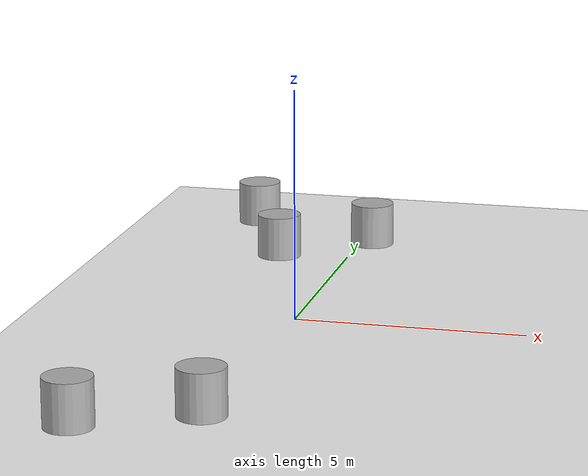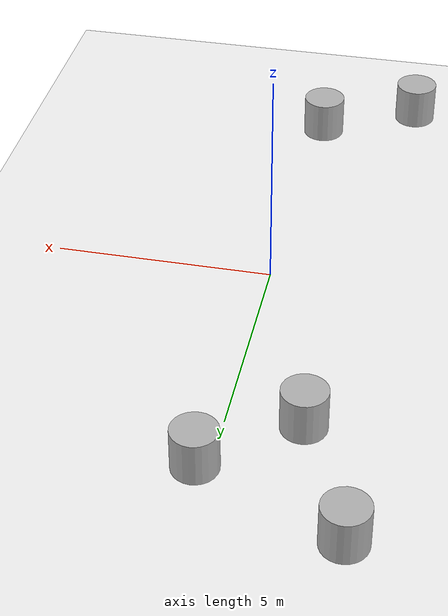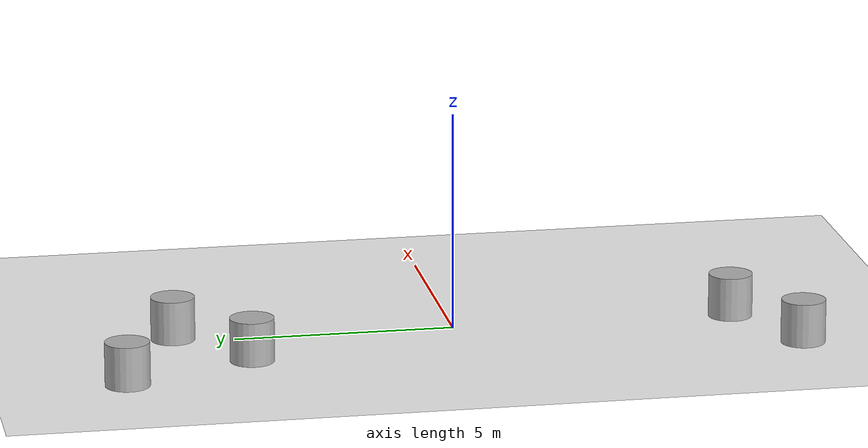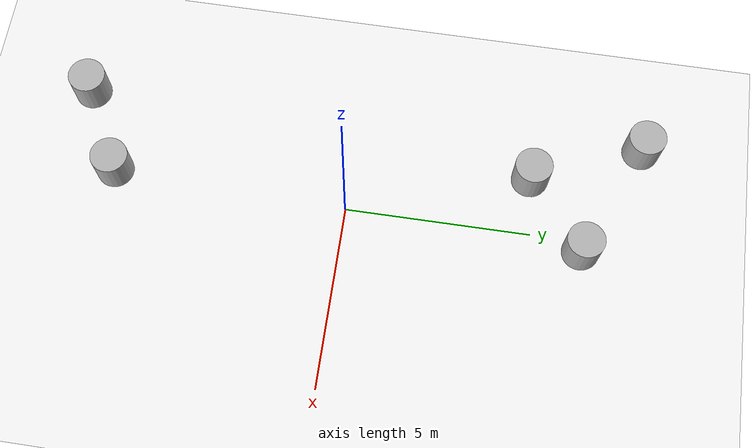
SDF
<sdf version='1.10'>
  <world name='empty'>
    <gravity>0 0 -9.8100000000000005</gravity>
    <plugin name='gz::sim::systems::Physics' filename='gz-sim-physics-system'/>
    <plugin name='gz::sim::systems::UserCommands' filename='gz-sim-user-commands-system'/>
    <plugin name='gz::sim::systems::SceneBroadcaster' filename='gz-sim-scene-broadcaster-system'/>
    <plugin name='gz::sim::systems::Sensors' filename='gz-sim-sensors-system'>
      <render_engine>ogre2</render_engine>
    </plugin>
    <magnetic_field>5.5644999999999998e-06 2.2875799999999999e-05 -4.2388400000000002e-05</magnetic_field>
    <atmosphere type='adiabatic'/>
    <physics type='ode'>
      <max_step_size>0.001</max_step_size>
      <real_time_factor>1</real_time_factor>
      <real_time_update_rate>1000</real_time_update_rate>
    </physics>
    <scene>
      <ambient>0.400000006 0.400000006 0.400000006 1</ambient>
      <background>0.699999988 0.699999988 0.699999988 1</background>
      <shadows>true</shadows>
    </scene>
    <model name='ground_plane'>
      <static>true</static>
      <link name='link'>
        <collision name='collision'>
          <geometry>
            <plane>
              <normal>0 0 1</normal>
              <size>100 100</size>
            </plane>
          </geometry>
          <surface>
            <friction>
              <ode/>
            </friction>
            <bounce/>
            <contact/>
          </surface>
        </collision>
        <visual name='visual'>
          <geometry>
            <plane>
              <normal>0 0 1</normal>
              <size>100 100</size>
            </plane>
          </geometry>
          <material>
            <ambient>0.920000017 0.920000017 0.920000017 1</ambient>
            <diffuse>0.959999979 0.959999979 0.959999979 1</diffuse>
            <specular>0.0500000007 0.0500000007 0.0500000007 1</specular>
          </material>
        </visual>
        <pose>0 0 0 0 0 0</pose>
        <inertial>
          <pose>0 0 0 0 0 0</pose>
          <mass>1</mass>
          <inertia>
            <ixx>1</ixx>
            <ixy>0</ixy>
            <ixz>0</ixz>
            <iyy>1</iyy>
            <iyz>0</iyz>
            <izz>1</izz>
          </inertia>
        </inertial>
        <enable_wind>false</enable_wind>
      </link>
      <pose>0 0 0 0 0 0</pose>
      <self_collide>false</self_collide>
    </model>
    <model name='cylinder'>
      <pose>-2.8514934620803851 7.7583001073047981 0.49999943794446622 -1.3041130000047322e-08 -1.8052341412127071e-08 0.096722305677201303</pose>
      <link name='cylinder_link'>
        <inertial>
          <inertia>
            <ixx>0.14580000000000001</ixx>
            <ixy>0</ixy>
            <ixz>0</ixz>
            <iyy>0.14580000000000001</iyy>
            <iyz>0</iyz>
            <izz>0.125</izz>
          </inertia>
          <mass>1</mass>
          <pose>0 0 0 0 0 0</pose>
        </inertial>
        <collision name='cylinder_collision'>
          <geometry>
            <cylinder>
              <radius>0.5</radius>
              <length>1</length>
            </cylinder>
          </geometry>
          <surface>
            <friction>
              <ode/>
            </friction>
            <bounce/>
            <contact/>
          </surface>
        </collision>
        <visual name='cylinder_visual'>
          <geometry>
            <cylinder>
              <radius>0.5</radius>
              <length>1</length>
            </cylinder>
          </geometry>
          <material>
            <ambient>0.300000012 0.300000012 0.300000012 1</ambient>
            <diffuse>0.699999988 0.699999988 0.699999988 1</diffuse>
            <specular>1 1 1 1</specular>
          </material>
        </visual>
        <pose>0 0 0 0 0 0</pose>
        <enable_wind>false</enable_wind>
      </link>
      <static>false</static>
      <self_collide>false</self_collide>
    </model>
    <model name='cylinder_0'>
      <pose>-1.5955899953842163 4.8280792236328125 0.49999899681689419 -7.8280183232555864e-20 -3.1917255807989657e-19 3.8493772304424311e-21</pose>
      <link name='cylinder_link'>
        <inertial>
          <inertia>
            <ixx>0.14580000000000001</ixx>
            <ixy>0</ixy>
            <ixz>0</ixz>
            <iyy>0.14580000000000001</iyy>
            <iyz>0</iyz>
            <izz>0.125</izz>
          </inertia>
          <mass>1</mass>
          <pose>0 0 0 0 0 0</pose>
        </inertial>
        <collision name='cylinder_collision'>
          <geometry>
            <cylinder>
              <radius>0.5</radius>
              <length>1</length>
            </cylinder>
          </geometry>
          <surface>
            <friction>
              <ode/>
            </friction>
            <bounce/>
            <contact/>
          </surface>
        </collision>
        <visual name='cylinder_visual'>
          <geometry>
            <cylinder>
              <radius>0.5</radius>
              <length>1</length>
            </cylinder>
          </geometry>
          <material>
            <ambient>0.300000012 0.300000012 0.300000012 1</ambient>
            <diffuse>0.699999988 0.699999988 0.699999988 1</diffuse>
            <specular>1 1 1 1</specular>
          </material>
        </visual>
        <pose>0 0 0 0 0 0</pose>
        <enable_wind>false</enable_wind>
      </link>
      <static>false</static>
      <self_collide>false</self_collide>
    </model>
    <model name='cylinder_1'>
      <pose>-0.20623517269533934 -6.3850124440282876 0.49999943983397177 1.2552751634539555e-08 -3.0448208155823102e-08 0.35880451605716851</pose>
      <link name='cylinder_link'>
        <inertial>
          <inertia>
            <ixx>0.14580000000000001</ixx>
            <ixy>0</ixy>
            <ixz>0</ixz>
            <iyy>0.14580000000000001</iyy>
            <iyz>0</iyz>
            <izz>0.125</izz>
          </inertia>
          <mass>1</mass>
          <pose>0 0 0 0 0 0</pose>
        </inertial>
        <collision name='cylinder_collision'>
          <geometry>
            <cylinder>
              <radius>0.5</radius>
              <length>1</length>
            </cylinder>
          </geometry>
          <surface>
            <friction>
              <ode/>
            </friction>
            <bounce/>
            <contact/>
          </surface>
        </collision>
        <visual name='cylinder_visual'>
          <geometry>
            <cylinder>
              <radius>0.5</radius>
              <length>1</length>
            </cylinder>
          </geometry>
          <material>
            <ambient>0.300000012 0.300000012 0.300000012 1</ambient>
            <diffuse>0.699999988 0.699999988 0.699999988 1</diffuse>
            <specular>1 1 1 1</specular>
          </material>
        </visual>
        <pose>0 0 0 0 0 0</pose>
        <enable_wind>false</enable_wind>
      </link>
      <static>false</static>
      <self_collide>false</self_collide>
    </model>
    <model name='cylinder_2'>
      <pose>-2.4580550193786621 -7.5352201461791992 0.49999899681689419 4.0151729282536304e-19 -2.3196509624824265e-19 -8.9946819893846724e-21</pose>
      <link name='cylinder_link'>
        <inertial>
          <inertia>
            <ixx>0.14580000000000001</ixx>
            <ixy>0</ixy>
            <ixz>0</ixz>
            <iyy>0.14580000000000001</iyy>
            <iyz>0</iyz>
            <izz>0.125</izz>
          </inertia>
          <mass>1</mass>
          <pose>0 0 0 0 0 0</pose>
        </inertial>
        <collision name='cylinder_collision'>
          <geometry>
            <cylinder>
              <radius>0.5</radius>
              <length>1</length>
            </cylinder>
          </geometry>
          <surface>
            <friction>
              <ode/>
            </friction>
            <bounce/>
            <contact/>
          </surface>
        </collision>
        <visual name='cylinder_visual'>
          <geometry>
            <cylinder>
              <radius>0.5</radius>
              <length>1</length>
            </cylinder>
          </geometry>
          <material>
            <ambient>0.300000012 0.300000012 0.300000012 1</ambient>
            <diffuse>0.699999988 0.699999988 0.699999988 1</diffuse>
            <specular>1 1 1 1</specular>
          </material>
        </visual>
        <pose>0 0 0 0 0 0</pose>
        <enable_wind>false</enable_wind>
      </link>
      <static>false</static>
      <self_collide>false</self_collide>
    </model>
    <model name='cylinder_4'>
      <pose>0.29772499278872055 6.3582601547972359 0.49999999999161265 -3.735320366367721e-09 -2.1958409339906604e-08 0.26556298474874934</pose>
      <link name='cylinder_link'>
        <inertial>
          <inertia>
            <ixx>0.14580000000000001</ixx>
            <ixy>0</ixy>
            <ixz>0</ixz>
            <iyy>0.14580000000000001</iyy>
            <iyz>0</iyz>
            <izz>0.125</izz>
          </inertia>
          <mass>1</mass>
          <pose>0 0 0 0 0 0</pose>
        </inertial>
        <collision name='cylinder_collision'>
          <geometry>
            <cylinder>
              <radius>0.5</radius>
              <length>1</length>
            </cylinder>
          </geometry>
          <surface>
            <friction>
              <ode/>
            </friction>
            <bounce/>
            <contact/>
          </surface>
        </collision>
        <visual name='cylinder_visual'>
          <geometry>
            <cylinder>
              <radius>0.5</radius>
              <length>1</length>
            </cylinder>
          </geometry>
          <material>
            <ambient>0.300000012 0.300000012 0.300000012 1</ambient>
            <diffuse>0.699999988 0.699999988 0.699999988 1</diffuse>
            <specular>1 1 1 1</specular>
          </material>
        </visual>
        <pose>0 0 0 0 0 0</pose>
        <enable_wind>false</enable_wind>
      </link>
      <static>false</static>
      <self_collide>false</self_collide>
    </model>
    <light name='sun' type='directional'>
      <pose>0 0 10 0 0 0</pose>
      <cast_shadows>true</cast_shadows>
      <intensity>1</intensity>
      <direction>-0.5 0.10000000000000001 -0.90000000000000002</direction>
      <diffuse>0.800000012 0.800000012 0.800000012 1</diffuse>
      <specular>0.200000003 0.200000003 0.200000003 1</specular>
      <attenuation>
        <range>10</range>
        <linear>1</linear>
        <constant>1</constant>
        <quadratic>0</quadratic>
      </attenuation>
      <spot>
        <inner_angle>0</inner_angle>
        <outer_angle>0</outer_angle>
        <falloff>0</falloff>
      </spot>
    </light>
  </world>
</sdf>
